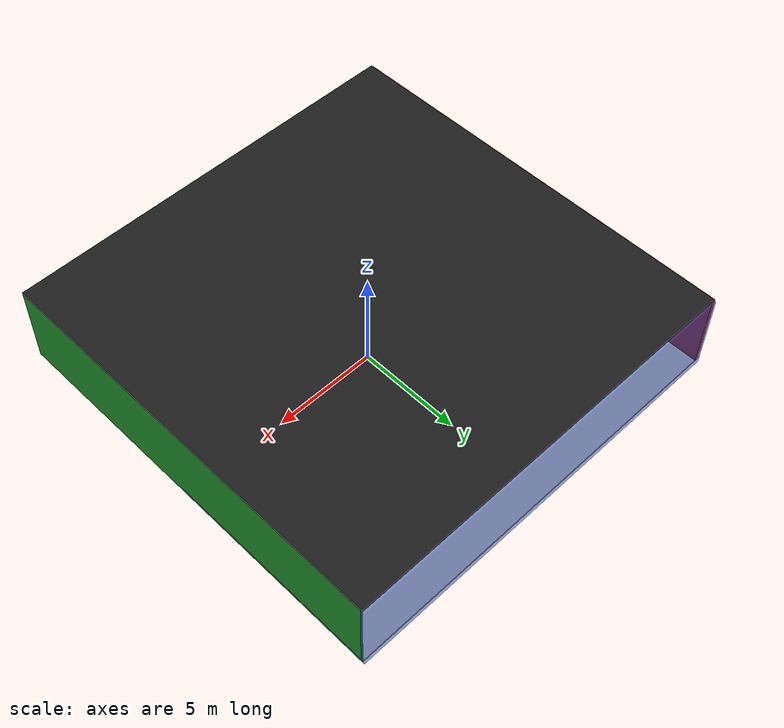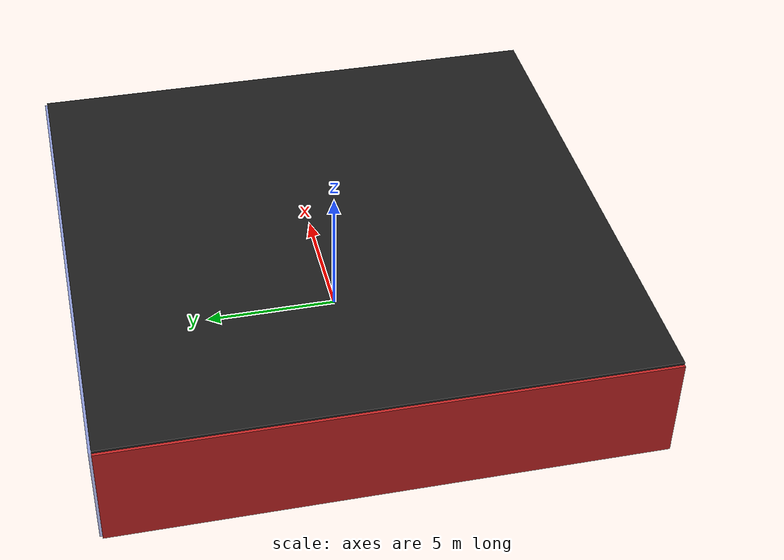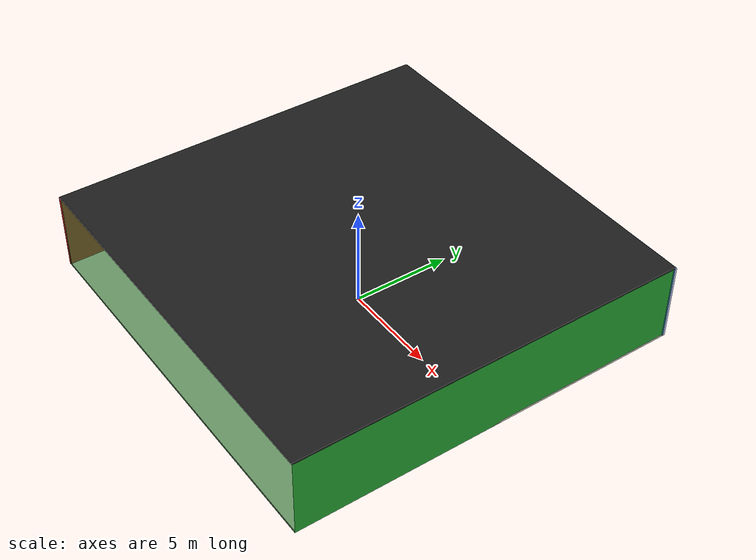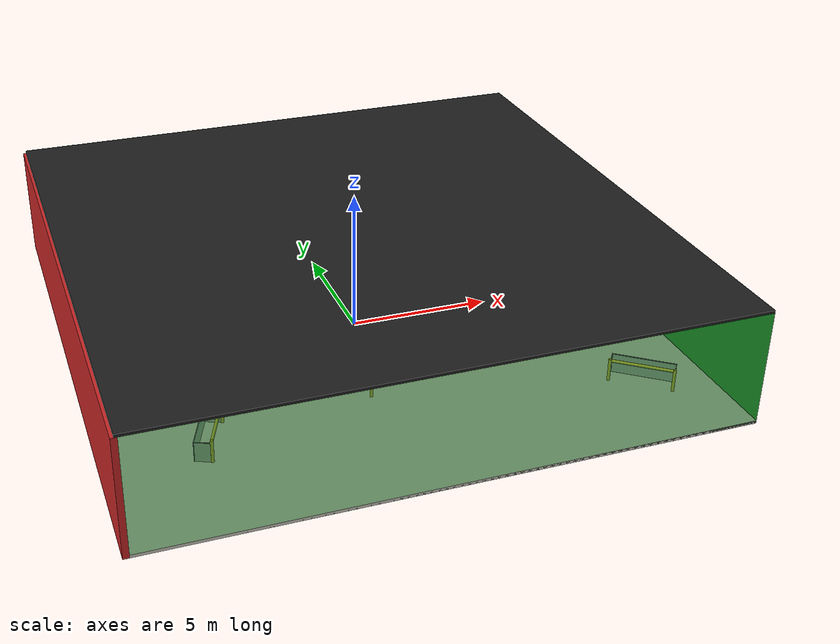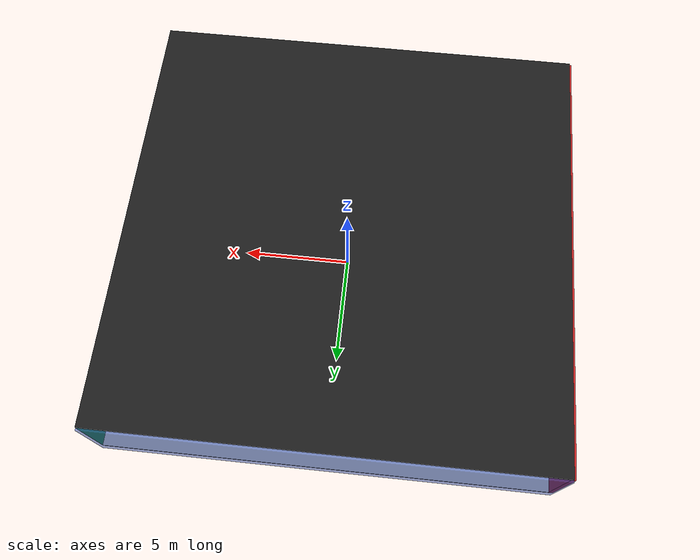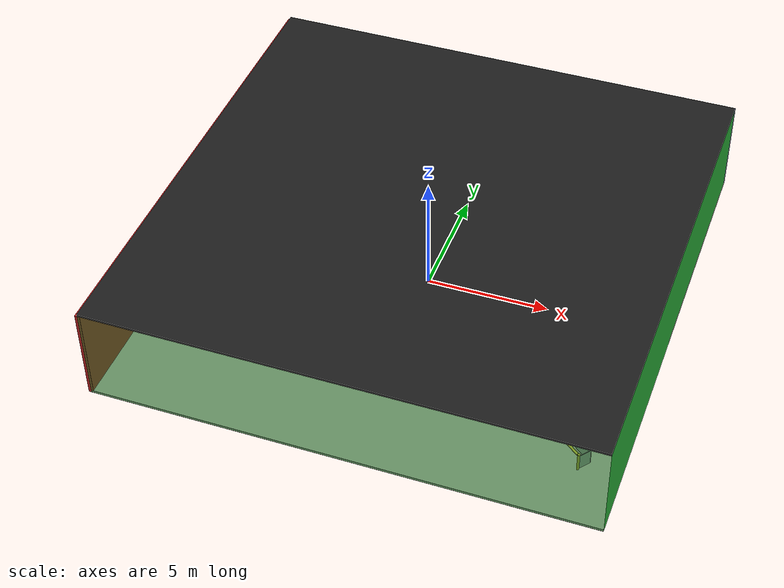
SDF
<sdf version="1.4">
 <world name="default">
  <physics type="ode">
   <max_step_size>0.001</max_step_size>
   <real_time_factor>1</real_time_factor>
   <real_time_update_rate>1000</real_time_update_rate>
   <gravity>0 0 -9.8</gravity>
  </physics>
  <scene><ambient>0.4 0.4 0.4 1</ambient><background>0.7 0.7 0.7 1</background><shadows>1</shadows></scene>
  <model name="Surrounding">
   <static>1</static>
   <link name="Ceiling">
    <collision name="Ceiling_Collision"><geometry><box><size>20 20 0.1</size></box></geometry></collision>
    <visual name="Ceiling_Visual">
     <geometry><box><size>20 20 0.1</size></box></geometry>
     <material>
      <script><uri>file://media/materials/scripts/gazebo.material</uri><name>Gazebo/FlatBlack</name></script>
     </material>
    </visual>
    <pose>0 0 4.05 0 0 0</pose>
   </link>
   <link name="Wall_South">
    <collision name="Wall_South_Collision">
     <geometry><box><size>20 0 4</size></box></geometry>
     <pose>0 0 2 0 -0 0</pose>
    </collision>
    <visual name="Wall_South_Visual">
     <pose>0 0 2 0 -0 0</pose>
     <geometry><box><size>20 0 4</size></box></geometry>
     <material>
      <script><uri>file://media/materials/scripts/gazebo.material</uri><name>Gazebo/GreenTransparent</name></script>
     </material>
    </visual>
    <velocity_decay><linear>0</linear><angular>0</angular></velocity_decay>
    <pose>0 -10 0 0 -0 0</pose>
   </link>
   <link name="Wall_East">
    <collision name="Wall_21_Collision">
     <geometry><box><size>20 0 4</size></box></geometry>
     <pose>0 0 2 0 -0 0</pose>
    </collision>
    <visual name="Wall_21_Visual">
     <pose>0 0 2 0 -0 0</pose>
     <geometry><box><size>20 0 4</size></box></geometry>
     <material>
      <script><uri>file://media/materials/scripts/gazebo.material</uri><name>Gazebo/Green</name></script>
     </material>
    </visual>
    <velocity_decay><linear>0</linear><angular>0</angular></velocity_decay>
    <pose>10 0 0 0 -0 1.5708</pose>
   </link>
   <link name="Wall_North">
    <collision name="Wall_22_Collision">
     <geometry><box><size>20 0.2 4</size></box></geometry>
     <pose>0 0 2 0 -0 0</pose>
    </collision>
    <visual name="Wall_22_Visual">
     <pose>0 0 2 0 -0 0</pose>
     <geometry><box><size>20 0.2 4</size></box></geometry>
     <material>
      <script><uri>file://media/materials/scripts/gazebo.material</uri><name>Gazebo/BlueTransparent</name></script>
     </material>
    </visual>
    <velocity_decay><linear>0</linear><angular>0</angular></velocity_decay>
    <pose>0 10 0 0 -0 0</pose>
   </link>
   <link name="Wall_West">
    <collision name="Wall_23_Collision">
     <geometry><box><size>20 0.2 4</size></box></geometry>
     <pose>0 0 2 0 -0 0</pose>
    </collision>
    <visual name="Wall_23_Visual">
     <pose>0 0 2 0 -0 0</pose>
     <geometry><box><size>20 0.2 4</size></box></geometry>
     <material>
      <script><uri>file://media/materials/scripts/gazebo.material</uri><name>Gazebo/RedGlow</name></script>
     </material>
    </visual>
    <velocity_decay><linear>0</linear><angular>0</angular></velocity_decay>
    <pose>-10 0 0 0 0 -1.5708</pose>
   </link>
   <link name="Ground_link">
    <collision name="collision">
     <pose>0 0 .05 0 -0 0</pose>
     <geometry><box><size>20 20 0.1</size></box></geometry>
    </collision>
    <visual name="visual">
     <pose>0 0 .05 0 -0 0</pose>
     <geometry><box><size>20 20 0.1</size></box></geometry>
     <material>
      <script><uri>file://media/materials/scripts/gazebo.material</uri><name>Gazebo/PaintedWall</name></script>
     </material>
    </visual>
   </link>
   <static>1</static>
  </model>
  <spherical_coordinates>
   <surface_model>EARTH_WGS84</surface_model>
   <latitude_deg>0</latitude_deg>
   <longitude_deg>0</longitude_deg>
   <elevation>0</elevation>
   <heading_deg>0</heading_deg>
  </spherical_coordinates>
  <light name="lightball_0" type="diffuse">
   <diffuse>0.8 0.8 0.8 1</diffuse>
   <specular>0.2 0.2 0.2 1</specular>
   <attenuation>
    <range>100</range>
    <constant>0.7</constant>
    <linear>0.01</linear>
    <quadratic>0.001</quadratic>
   </attenuation>
   <direction>-0.5 0.1 -0.9</direction>
   <pose>-0.269377340601 -3.19510671165 0.649130298997 0 0 0</pose>
  </light>
  <light name="lightball_1" type="diffuse">
   <diffuse>0.8 0.8 0.8 1</diffuse>
   <specular>0.2 0.2 0.2 1</specular>
   <attenuation>
    <range>100</range>
    <constant>0.7</constant>
    <linear>0.01</linear>
    <quadratic>0.001</quadratic>
   </attenuation>
   <direction>-0.5 0.1 -0.9</direction>
   <pose>2.52399947409 -1.64039703617 2.32771852159 0 0 0</pose>
  </light>
  <light name="lightball_2" type="diffuse">
   <diffuse>0.8 0.8 0.8 1</diffuse>
   <specular>0.2 0.2 0.2 1</specular>
   <attenuation>
    <range>100</range>
    <constant>0.7</constant>
    <linear>0.01</linear>
    <quadratic>0.001</quadratic>
   </attenuation>
   <direction>-0.5 0.1 -0.9</direction>
   <pose>-5.80244241105 -4.49502593881 2.76987726494 0 0 0</pose>
  </light>
  <light name="lightball_3" type="diffuse">
   <diffuse>0.8 0.8 0.8 1</diffuse>
   <specular>0.2 0.2 0.2 1</specular>
   <attenuation>
    <range>100</range>
    <constant>0.7</constant>
    <linear>0.01</linear>
    <quadratic>0.001</quadratic>
   </attenuation>
   <direction>-0.5 0.1 -0.9</direction>
   <pose>8.67996951198 8.50884999754 1.40087057291 0 0 0</pose>
  </light>
  <light name="lightball_4" type="diffuse">
   <diffuse>0.8 0.8 0.8 1</diffuse>
   <specular>0.2 0.2 0.2 1</specular>
   <attenuation>
    <range>100</range>
    <constant>0.7</constant>
    <linear>0.01</linear>
    <quadratic>0.001</quadratic>
   </attenuation>
   <direction>-0.5 0.1 -0.9</direction>
   <pose>8.4538927819 -6.43398914918 2.67790683124 0 0 0</pose>
  </light>
  <light name="lightball_5" type="diffuse">
   <diffuse>0.8 0.8 0.8 1</diffuse>
   <specular>0.2 0.2 0.2 1</specular>
   <attenuation>
    <range>100</range>
    <constant>0.7</constant>
    <linear>0.01</linear>
    <quadratic>0.001</quadratic>
   </attenuation>
   <direction>-0.5 0.1 -0.9</direction>
   <pose>1.97912458891 5.00758401039 0.657403334821 0 0 0</pose>
  </light>
  <light name="lightball_6" type="diffuse">
   <diffuse>0.8 0.8 0.8 1</diffuse>
   <specular>0.2 0.2 0.2 1</specular>
   <attenuation>
    <range>100</range>
    <constant>0.7</constant>
    <linear>0.01</linear>
    <quadratic>0.001</quadratic>
   </attenuation>
   <direction>-0.5 0.1 -0.9</direction>
   <pose>8.00912191311 8.2624271833 3.75030385132 0 0 0</pose>
  </light>
  <light name="lightball_7" type="diffuse">
   <diffuse>0.8 0.8 0.8 1</diffuse>
   <specular>0.2 0.2 0.2 1</specular>
   <attenuation>
    <range>100</range>
    <constant>0.7</constant>
    <linear>0.01</linear>
    <quadratic>0.001</quadratic>
   </attenuation>
   <direction>-0.5 0.1 -0.9</direction>
   <pose>8.75532838303 3.96473831556 2.37634803651 0 0 0</pose>
  </light>
  <light name="lightball_8" type="diffuse">
   <diffuse>0.8 0.8 0.8 1</diffuse>
   <specular>0.2 0.2 0.2 1</specular>
   <attenuation>
    <range>100</range>
    <constant>0.7</constant>
    <linear>0.01</linear>
    <quadratic>0.001</quadratic>
   </attenuation>
   <direction>-0.5 0.1 -0.9</direction>
   <pose>-7.49730684805 4.78281892387 1.2609220392 0 0 0</pose>
  </light>
  <include>
   <uri>model://robocup_3Dsim_goal</uri>
   <pose>-6.37047338848 -5.60659044424 0 0 0 2.76152540431</pose>
  </include>
  <include>
   <uri>model://textured_shapes</uri>
   <pose>-5.26676324746 5.53715262063 0 0 0 2.550323188</pose>
  </include>
  <include>
   <uri>model://robocup_3Dsim_goal</uri>
   <pose>-2.05466349789 -4.46554292607 0 0 0 1.28704242694</pose>
  </include>
  <include>
   <uri>model://robocup_3Dsim_goal</uri>
   <pose>-2.46672198342 -0.503047809487 0 0 0 1.80734766739</pose>
  </include>
  <include><uri>model://table</uri><pose>-0.830151291221 1.93823503549 0 0 0 1.33468005752</pose></include>
  <include><uri>model://cabinet</uri><pose>2.08982706556 -3.93911827418 0 0 0 2.54014397644</pose></include>
  <include><uri>model://cabinet</uri><pose>2.52410676799 -0.987559272241 0 0 0 2.14884337596</pose></include>
  <include><uri>model://cabinet</uri><pose>5.69708723087 -2.05384498572 0 0 0 2.61705066062</pose></include>
  <include><uri>model://cabinet</uri><pose>5.5970308936 2.03788912347 0 0 0 2.43215758693</pose></include>
  <include>
   <uri>model://robocup_3Dsim_goal</uri>
   <pose>7.56087749726 -7.00251310159 0 0 0 0.91452145385</pose>
  </include>
 </world>
</sdf>

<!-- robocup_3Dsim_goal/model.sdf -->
<sdf version="1.5">
  <model name="robocup_3d_goal">
    <static>true</static>
    <link name="left_post">
      <pose>0 1.05 0.45 0 0 0</pose>
      <collision name="collision">
        <geometry>
          <cylinder>
            <radius>0.05</radius>
            <length>0.9</length>
          </cylinder>
        </geometry>
      </collision>
      <visual name="visual">
        <geometry>
          <cylinder>
            <radius>0.05</radius>
            <length>0.9</length>
          </cylinder>
        </geometry>
        <material>
          <script>
            <uri>file://media/materials/scripts/gazebo.material</uri>
            <name>Gazebo/ZincYellow</name>
          </script>
        </material>
      </visual>
    </link>
    <link name="left_support_horiz_lower">
      <pose>0.30 1.05 0.01 0 0 0</pose>
      <collision name="collision">
        <geometry>
          <box>
            <size>0.50 0.02 0.02</size>
          </box>
        </geometry>
      </collision>
      <visual name="visual">
        <geometry>
          <box>
            <size>0.50 0.02 0.02</size>
          </box>
        </geometry>
        <material>
          <script>
            <uri>file://media/materials/scripts/gazebo.material</uri>
            <name>Gazebo/White</name>
          </script>
        </material>
      </visual>
    </link>
    <link name="left_support_horiz_upper">
      <pose>0.30 1.05 0.79 0 0 0</pose>
      <collision name="collision">
        <geometry>
          <box>
            <size>0.50 0.02 0.02</size>
          </box>
        </geometry>
      </collision>
      <visual name="visual">
        <geometry>
          <box>
            <size>0.50 0.02 0.02</size>
          </box>
        </geometry>
        <material>
          <script>
            <uri>file://media/materials/scripts/gazebo.material</uri>
            <name>Gazebo/White</name>
          </script>
        </material>
      </visual>
    </link>
    <link name="left_support_vertical">
      <pose>0.56 1.05 0.4 0 1.5708 0</pose>
      <collision name="collision">
        <geometry>
          <box>
            <size>0.80 0.02 0.02</size>
          </box>
        </geometry>
      </collision>
      <visual name="visual">
        <geometry>
          <box>
            <size>0.80 0.02 0.02</size>
          </box>
        </geometry>
        <material>
          <script>
            <uri>file://media/materials/scripts/gazebo.material</uri>
            <name>Gazebo/White</name>
          </script>
        </material>
      </visual>
    </link>
    <link name="right_support_horiz_lower">
      <pose>0.30 -1.05 0.01 0 0 0</pose>
      <collision name="collision">
        <geometry>
          <box>
            <size>0.50 0.02 0.02</size>
          </box>
        </geometry>
      </collision>
      <visual name="visual">
        <geometry>
          <box>
            <size>0.50 0.02 0.02</size>
          </box>
        </geometry>
        <material>
          <script>
            <uri>file://media/materials/scripts/gazebo.material</uri>
            <name>Gazebo/White</name>
          </script>
        </material>
      </visual>
    </link>
    <link name="right_support_horiz_upper">
      <pose>0.30 -1.05 0.79 0 0 0</pose>
      <collision name="collision">
        <geometry>
          <box>
            <size>0.50 0.02 0.02</size>
          </box>
        </geometry>
      </collision>
      <visual name="visual">
        <geometry>
          <box>
            <size>0.50 0.02 0.02</size>
          </box>
        </geometry>
        <material>
          <script>
            <uri>file://media/materials/scripts/gazebo.material</uri>
            <name>Gazebo/White</name>
          </script>
        </material>
      </visual>
    </link>
    <link name="right_support_vertical">
      <pose>0.56 -1.05 0.4 0 1.5708 0</pose>
      <collision name="collision">
        <geometry>
          <box>
            <size>0.80 0.02 0.02</size>
          </box>
        </geometry>
      </collision>
      <visual name="visual">
        <geometry>
          <box>
            <size>0.80 0.02 0.02</size>
          </box>
        </geometry>
        <material>
          <script>
            <uri>file://media/materials/scripts/gazebo.material</uri>
            <name>Gazebo/White</name>
          </script>
        </material>
      </visual>
    </link>
    <link name="center_support_horiz_lower">
      <pose>0.56 0 0.01 0 1.5708 0</pose>
      <collision name="collision">
        <geometry>
          <box>
            <size>0.02 2.08 0.02</size>
          </box>
        </geometry>
      </collision>
      <visual name="visual">
        <geometry>
          <box>
            <size>0.02 2.08 0.02</size>
          </box>
        </geometry>
        <material>
          <script>
            <uri>file://media/materials/scripts/gazebo.material</uri>
            <name>Gazebo/White</name>
          </script>
        </material>
      </visual>
    </link>
    <link name="center_support_horiz_upper">
      <pose>0.56 0 0.79 0 1.5708 0</pose>
      <collision name="collision">
        <geometry>
          <box>
            <size>0.02 2.08 0.02</size>
          </box>
        </geometry>
      </collision>
      <visual name="visual">
        <geometry>
          <box>
            <size>0.02 2.08 0.02</size>
          </box>
        </geometry>
        <material>
          <script>
            <uri>file://media/materials/scripts/gazebo.material</uri>
            <name>Gazebo/White</name>
          </script>
        </material>
      </visual>
    </link>
    <link name="right_post">
      <pose>0 -1.05 0.45 0 0 0</pose>
      <collision name="collision">
        <geometry>
          <cylinder>
            <radius>0.05</radius>
            <length>0.9</length>
          </cylinder>
        </geometry>
      </collision>
      <visual name="visual">
        <geometry>
          <cylinder>
            <radius>0.05</radius>
            <length>0.9</length>
          </cylinder>
        </geometry>
        <material>
          <script>
            <uri>file://media/materials/scripts/gazebo.material</uri>
            <name>Gazebo/ZincYellow</name>
          </script>
        </material>
      </visual>
    </link>
    <link name="crossbar">
      <pose>0 0 0.85 1.57 1.57 0</pose>
      <collision name="collision">
        <geometry>
          <cylinder>
            <radius>0.05</radius>
            <length>2.0</length>
          </cylinder>
        </geometry>
      </collision>
      <visual name="visual">
        <geometry>
          <cylinder>
            <radius>0.05</radius>
            <length>2.0</length>
          </cylinder>
        </geometry>
        <material>
          <script>
            <uri>file://media/materials/scripts/gazebo.material</uri>
            <name>Gazebo/ZincYellow</name>
          </script>
        </material>
      </visual>
    </link>
    <link name="center_net">
      <pose>0.56 0 0.40 0 0 0</pose>
      <collision name="collision">
        <geometry>
          <box>
            <size>0.01 2.1 0.80</size>
          </box>
        </geometry>
      </collision>
      <visual name="visual">
        <geometry>
          <box>
            <size>0.01 2.1 0.80</size>
          </box>
        </geometry>
        <material>
          <script>
            <uri>model://../model_source/models/robocup09_spl_field/materials/scripts/</uri>
            <uri>model://../model_source/models/robocup09_spl_field/materials/textures/</uri>
            <name>RoboCup/Net</name>
          </script>
        </material>
      </visual>
    </link>
    <link name="left_net">
      <pose>0.30 1.05 0.40 0 0 0</pose>
      <collision name="collision">
        <geometry>
          <box>
            <size>0.50 0.01 0.76</size>
          </box>
        </geometry>
      </collision>
      <visual name="visual">
        <geometry>
          <box>
            <size>0.50 0.01 0.76</size>
          </box>
        </geometry>
        <material>
          <script>
            <uri>model://../model_source/models/robocup09_spl_field/materials/scripts/</uri>
            <uri>model://../model_source/models/robocup09_spl_field/materials/textures/</uri>
            <name>RoboCup/Net</name>
          </script>
        </material>
      </visual>
    </link>
    <link name="right_net">
      <pose>0.30 -1.05 0.40 0 0 0</pose>
      <collision name="collision">
        <geometry>
          <box>
            <size>0.50 0.01 0.76</size>
          </box>
        </geometry>
      </collision>
      <visual name="visual">
        <geometry>
          <box>
            <size>0.50 0.01 0.76</size>
          </box>
        </geometry>
        <material>
          <script>
            <uri>model://../model_source/models/robocup09_spl_field/materials/scripts/</uri>
            <uri>model://../model_source/models/robocup09_spl_field/materials/textures/</uri>
            <name>RoboCup/Net</name>
          </script>
        </material>
      </visual>
    </link>
  </model>
</sdf>

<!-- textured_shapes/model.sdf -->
<sdf version="1.6">
  <model name="textured_shapes">
    <pose>0 0 0.5 0 0 0</pose>
    <link name="box">
      <pose>0 -1.5 0 0 0 0</pose>
      <collision name="collision">
        <geometry>
          <box>
            <size>1 1 1</size>
          </box>
        </geometry>
      </collision>
      <visual name="visual">
        <geometry>
          <box>
            <size>1 1 1</size>
          </box>
        </geometry>
        <material>
          <script>
            <uri>model://../model_source/models/textured_shapes/materials/scripts</uri>
            <uri>model://../model_source/models/textured_shapes/materials/textures</uri>
            <name>TexturedShape/Squares</name>
          </script>
        </material>
      </visual>
    </link>
    <link name="sphere">
      <collision name="collision">
        <geometry>
          <sphere>
            <radius>0.5</radius>
          </sphere>
        </geometry>
      </collision>
      <visual name="visual">
        <geometry>
          <sphere>
            <radius>0.5</radius>
          </sphere>
        </geometry>
        <material>
          <script>
            <uri>model://../model_source/models/textured_shapes/materials/scripts</uri>
            <uri>model://../model_source/models/textured_shapes/materials/textures</uri>
            <name>TexturedShape/Squares</name>
          </script>
        </material>
      </visual>
    </link>
    <link name="cylinder">
      <pose>0 1.5 0 0 0 0</pose>
      <collision name="collision">
        <geometry>
          <cylinder>
            <radius>0.5</radius>
            <length>1</length>
          </cylinder>
        </geometry>
      </collision>
      <visual name="visual">
        <geometry>
          <cylinder>
            <radius>0.5</radius>
            <length>1</length>
          </cylinder>
        </geometry>
        <material>
          <script>
            <uri>model://../model_source/models/textured_shapes/materials/scripts</uri>
            <uri>model://../model_source/models/textured_shapes/materials/textures</uri>
            <name>TexturedShape/Squares</name>
          </script>
        </material>
      </visual>
    </link>
  </model>
</sdf>

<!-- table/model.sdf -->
<sdf version="1.5">
  <model name="table">
    <static>true</static>
    <link name="link">
      <collision name="surface">
        <pose>0 0 1.0 0 0 0</pose>
        <geometry>
          <box>
            <size>1.5 0.8 0.03</size>
          </box>
        </geometry>
        <surface>
          <friction>
            <ode>
              <mu>0.6</mu>
              <mu2>0.6</mu2>
            </ode>
          </friction>
        </surface>
      </collision>
      <visual name="visual1">
        <pose>0 0 1.0 0 0 0</pose>
        <geometry>
          <box>
            <size>1.5 0.8 0.03</size>
          </box>
        </geometry>
        <material>
          <script>
            <uri>model://media/materials/scripts/gazebo.material</uri>
            <name>Gazebo/Wood</name>
          </script>
        </material>
      </visual>
      <collision name="front_left_leg">
        <pose>0.68 0.38 0.5 0 0 0</pose>
        <geometry>
          <cylinder>
            <radius>0.02</radius>
            <length>1.0</length>
          </cylinder>
        </geometry>
      </collision>
      <visual name="front_left_leg">
        <pose>0.68 0.38 0.5 0 0 0</pose>
        <geometry>
          <cylinder>
            <radius>0.02</radius>
            <length>1.0</length>
          </cylinder>
        </geometry>
        <material>
          <script>
            <uri>model://media/materials/scripts/gazebo.material</uri>
            <name>Gazebo/Grey</name>
          </script>
        </material>
      </visual>
      <collision name="front_right_leg">
        <pose>0.68 -0.38 0.5 0 0 0</pose>
        <geometry>
          <cylinder>
            <radius>0.02</radius>
            <length>1.0</length>
          </cylinder>
        </geometry>
      </collision>
      <visual name="front_right_leg">
        <pose>0.68 -0.38 0.5 0 0 0</pose>
        <geometry>
          <cylinder>
            <radius>0.02</radius>
            <length>1.0</length>
          </cylinder>
        </geometry>
        <material>
          <script>
            <uri>model://media/materials/scripts/gazebo.material</uri>
            <name>Gazebo/Grey</name>
          </script>
        </material>
      </visual>
      <collision name="back_right_leg">
        <pose>-0.68 -0.38 0.5 0 0 0</pose>
        <geometry>
          <cylinder>
            <radius>0.02</radius>
            <length>1.0</length>
          </cylinder>
        </geometry>
      </collision>
      <visual name="back_right_leg">
        <pose>-0.68 -0.38 0.5 0 0 0</pose>
        <geometry>
          <cylinder>
            <radius>0.02</radius>
            <length>1.0</length>
          </cylinder>
        </geometry>
        <material>
          <script>
            <uri>model://media/materials/scripts/gazebo.material</uri>
            <name>Gazebo/Grey</name>
          </script>
        </material>
      </visual>
      <collision name="back_left_leg">
        <pose>-0.68 0.38 0.5 0 0 0</pose>
        <geometry>
          <cylinder>
            <radius>0.02</radius>
            <length>1.0</length>
          </cylinder>
        </geometry>
      </collision>
      <visual name="back_left_leg">
        <pose>-0.68 0.38 0.5 0 0 0</pose>
        <geometry>
          <cylinder>
            <radius>0.02</radius>
            <length>1.0</length>
          </cylinder>
        </geometry>
        <material>
          <script>
            <uri>model://media/materials/scripts/gazebo.material</uri>
            <name>Gazebo/Grey</name>
          </script>
        </material>
      </visual>
    </link>
  </model>
</sdf>

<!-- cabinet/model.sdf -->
<sdf version="1.5">
  <model name="cabinet">
    <static>true</static>
    <link name="cabinet_bottom_plate">
      <inertial>
        <pose>0 0 -1 0 0 0</pose>
        <inertia>
          <ixx>2.050000</ixx>
          <ixy>0</ixy>
          <ixz>0</ixz>
          <iyy>2.050000</iyy>
          <iyz>0</iyz>
          <izz>2.050000</izz>
        </inertia>
        <mass>25.000000</mass>
      </inertial>
      <collision name="cabinet_bottom_plate_geom">
        <pose>0 0 0.010000 0 0 0</pose>
        <geometry>
          <box>
            <size>0.450000 0.450000 0.020000</size>
          </box>
        </geometry>
      </collision>
      <visual name="cabinet_bottom_plate_geom_visual">
        <pose>0 0 0.010000 0 0 0</pose>
        <geometry>
          <box>
            <size>0.450000 0.450000 0.020000</size>
          </box>
        </geometry>
        <material>
          <script>
            <uri>model://media/materials/scripts/gazebo.material</uri>
            <name>Gazebo/Wood</name>
          </script>
        </material>
      </visual>
      <collision name="cabinet_bottom_plate_geom_cabinet_back_plate">
        <pose>0.235000 0 0.510000 0 0 0</pose>
        <geometry>
          <box>
            <size>0.020000 0.450000 1.020000</size>
          </box>
        </geometry>
      </collision>
      <visual name="cabinet_bottom_plate_geom_cabinet_back_plate_visual">
        <pose>0.235000 0 0.510000 0 0 0</pose>
        <geometry>
          <box>
            <size>0.020000 0.450000 1.020000</size>
          </box>
        </geometry>
        <material>
          <script>
            <uri>model://media/materials/scripts/gazebo.material</uri>
            <name>Gazebo/Wood</name>
          </script>
        </material>
      </visual>
      <collision name="cabinet_bottom_plate_geom_cabinet_left_plate">
        <pose>0 0.235000 0.510000 0 0 0</pose>
        <geometry>
          <box>
            <size>0.450000 0.020000 1.020000</size>
          </box>
        </geometry>
      </collision>
      <visual name="cabinet_bottom_plate_geom_cabinet_left_plate_visual">
        <pose>0 0.235000 0.510000 0 0 0</pose>
        <geometry>
          <box>
            <size>0.450000 0.020000 1.020000</size>
          </box>
        </geometry>
        <material>
          <script>
            <uri>model://media/materials/scripts/gazebo.material</uri>
            <name>Gazebo/Wood</name>
          </script>
        </material>
      </visual>
      <collision name="cabinet_bottom_plate_geom_cabinet_middle_plate">
        <pose>0 0 0.510000 0 0 0</pose>
        <geometry>
          <box>
            <size>0.450000 0.450000 0.020000</size>
          </box>
        </geometry>
      </collision>
      <visual name="cabinet_bottom_plate_geom_cabinet_middle_plate_visual">
        <pose>0 0 0.510000 0 0 0</pose>
        <geometry>
          <box>
            <size>0.450000 0.450000 0.020000</size>
          </box>
        </geometry>
        <material>
          <script>
            <uri>model://media/materials/scripts/gazebo.material</uri>
            <name>Gazebo/Wood</name>
          </script>
        </material>
      </visual>
      <collision name="cabinet_bottom_plate_geom_cabinet_right_plate">
        <pose>0 -0.235000 0.510000 0 0 0</pose>
        <geometry>
          <box>
            <size>0.450000 0.020000 1.020000</size>
          </box>
        </geometry>
      </collision>
      <visual name="cabinet_bottom_plate_geom_cabinet_right_plate_visual">
        <pose>0 -0.235000 0.510000 0 0 0</pose>
        <geometry>
          <box>
            <size>0.450000 0.020000 1.020000</size>
          </box>
        </geometry>
        <material>
          <script>
            <uri>model://media/materials/scripts/gazebo.material</uri>
            <name>Gazebo/Wood</name>
          </script>
        </material>
      </visual>
      <collision name="cabinet_bottom_plate_geom_cabinet_top_plate">
        <pose>0 0 1.010000 0 0 0</pose>
        <geometry>
          <box>
            <size>0.450000 0.450000 0.020000</size>
          </box>
        </geometry>
      </collision>
      <visual name="cabinet_bottom_plate_geom_cabinet_top_plate_visual">
        <pose>0 0 1.010000 0 0 0</pose>
        <geometry>
          <box>
            <size>0.450000 0.450000 0.020000</size>
          </box>
        </geometry>
        <material>
          <script>
            <uri>model://media/materials/scripts/gazebo.material</uri>
            <name>Gazebo/Wood</name>
          </script>
        </material>
      </visual>
    </link>
  </model>
</sdf>
